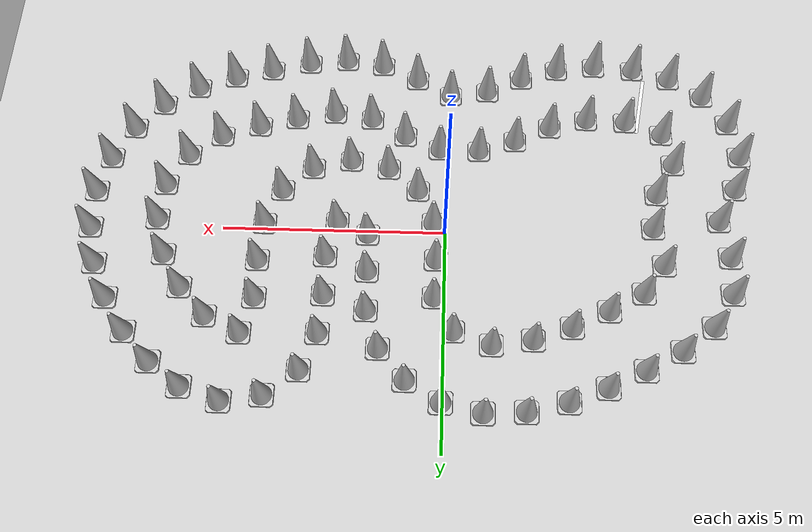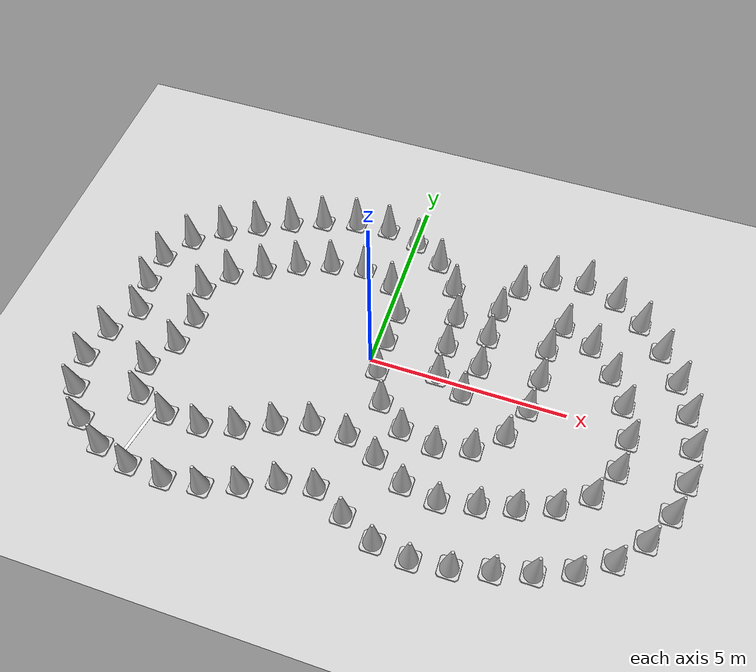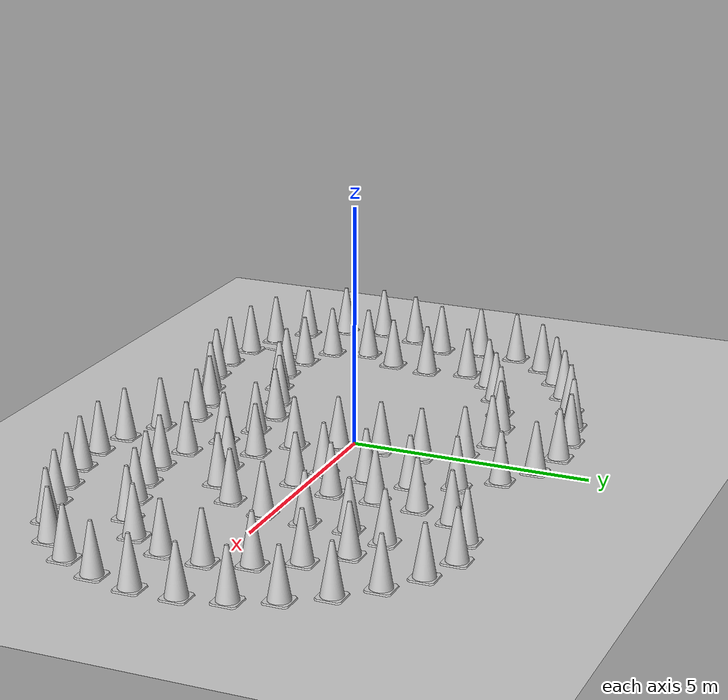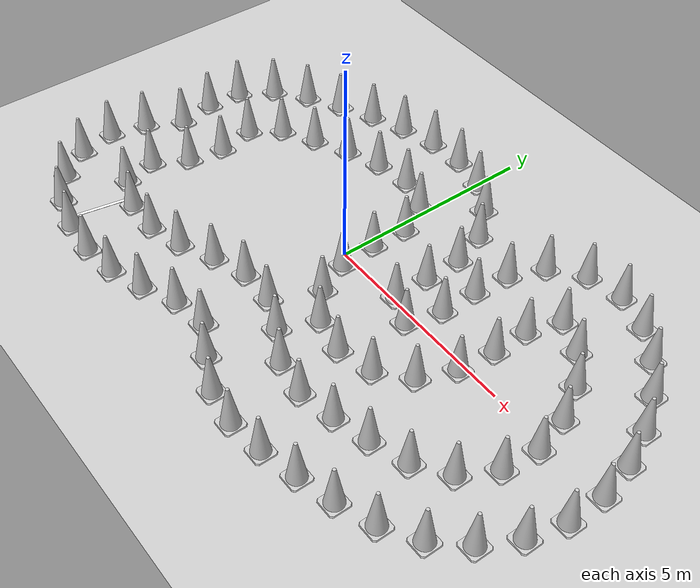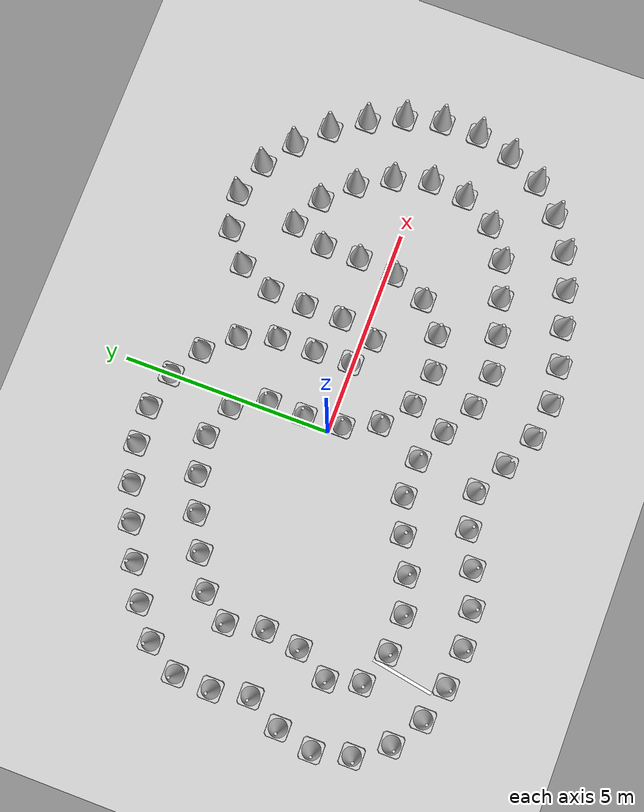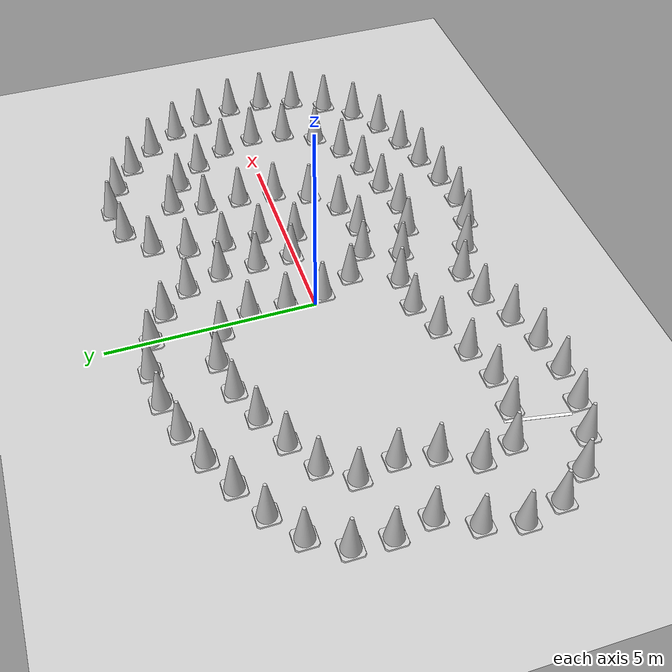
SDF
<?xml version="1.0"?>
<sdf version="1.6">
  <world name="cone_track">
    <include><uri>model://ground_plane</uri></include>
    <include><uri>model://sun</uri></include>
    <include><name>cone_0</name><uri>model://traffic_cone</uri><pose>-4.471 -2.761 0 0 0 0</pose></include>
    <include><name>cone_1</name><uri>model://traffic_cone</uri><pose>-3.555 -2.795 0 0 0 0</pose></include>
    <include><name>cone_2</name><uri>model://traffic_cone</uri><pose>-2.685 -2.565 0 0 0 0</pose></include>
    <include><name>cone_3</name><uri>model://traffic_cone</uri><pose>-1.861 -2.176 0 0 0 0</pose></include>
    <include><name>cone_4</name><uri>model://traffic_cone</uri><pose>-1.017 -1.888 0 0 0 0</pose></include>
    <include><name>cone_5</name><uri>model://traffic_cone</uri><pose>-0.109 -1.907 0 0 0 0</pose></include>
    <include><name>cone_6</name><uri>model://traffic_cone</uri><pose>0.704 -2.248 0 0 0 0</pose></include>
    <include><name>cone_7</name><uri>model://traffic_cone</uri><pose>1.501 -2.694 0 0 0 0</pose></include>
    <include><name>cone_8</name><uri>model://traffic_cone</uri><pose>2.385 -2.835 0 0 0 0</pose></include>
    <include><name>cone_9</name><uri>model://traffic_cone</uri><pose>3.279 -2.660 0 0 0 0</pose></include>
    <include><name>cone_10</name><uri>model://traffic_cone</uri><pose>4.139 -2.436 0 0 0 0</pose></include>
    <include><name>cone_11</name><uri>model://traffic_cone</uri><pose>5.002 -2.144 0 0 0 0</pose></include>
    <include><name>cone_12</name><uri>model://traffic_cone</uri><pose>5.721 -1.621 0 0 0 0</pose></include>
    <include><name>cone_13</name><uri>model://traffic_cone</uri><pose>6.158 -0.824 0 0 0 0</pose></include>
    <include><name>cone_14</name><uri>model://traffic_cone</uri><pose>6.244 0.059 0 0 0 0</pose></include>
    <include><name>cone_15</name><uri>model://traffic_cone</uri><pose>5.996 0.929 0 0 0 0</pose></include>
    <include><name>cone_16</name><uri>model://traffic_cone</uri><pose>5.544 1.708 0 0 0 0</pose></include>
    <include><name>cone_17</name><uri>model://traffic_cone</uri><pose>4.924 2.364 0 0 0 0</pose></include>
    <include><name>cone_18</name><uri>model://traffic_cone</uri><pose>4.134 2.731 0 0 0 0</pose></include>
    <include><name>cone_19</name><uri>model://traffic_cone</uri><pose>3.883 1.908 0 0 0 0</pose></include>
    <include><name>cone_20</name><uri>model://traffic_cone</uri><pose>3.894 1.014 0 0 0 0</pose></include>
    <include><name>cone_21</name><uri>model://traffic_cone</uri><pose>3.810 0.108 0 0 0 0</pose></include>
    <include><name>cone_22</name><uri>model://traffic_cone</uri><pose>3.470 -0.746 0 0 0 0</pose></include>
    <include><name>cone_23</name><uri>model://traffic_cone</uri><pose>2.801 -1.334 0 0 0 0</pose></include>
    <include><name>cone_24</name><uri>model://traffic_cone</uri><pose>1.931 -1.550 0 0 0 0</pose></include>
    <include><name>cone_25</name><uri>model://traffic_cone</uri><pose>1.055 -1.360 0 0 0 0</pose></include>
    <include><name>cone_26</name><uri>model://traffic_cone</uri><pose>0.371 -0.806 0 0 0 0</pose></include>
    <include><name>cone_27</name><uri>model://traffic_cone</uri><pose>0.007 0.011 0 0 0 0</pose></include>
    <include><name>cone_28</name><uri>model://traffic_cone</uri><pose>-0.069 0.919 0 0 0 0</pose></include>
    <include><name>cone_29</name><uri>model://traffic_cone</uri><pose>-0.042 1.812 0 0 0 0</pose></include>
    <include><name>cone_30</name><uri>model://traffic_cone</uri><pose>-0.463 2.581 0 0 0 0</pose></include>
    <include><name>cone_31</name><uri>model://traffic_cone</uri><pose>-1.295 2.871 0 0 0 0</pose></include>
    <include><name>cone_32</name><uri>model://traffic_cone</uri><pose>-2.196 2.738 0 0 0 0</pose></include>
    <include><name>cone_33</name><uri>model://traffic_cone</uri><pose>-3.041 2.434 0 0 0 0</pose></include>
    <include><name>cone_34</name><uri>model://traffic_cone</uri><pose>-3.862 2.035 0 0 0 0</pose></include>
    <include><name>cone_35</name><uri>model://traffic_cone</uri><pose>-4.641 1.601 0 0 0 0</pose></include>
    <include><name>cone_36</name><uri>model://traffic_cone</uri><pose>-5.133 0.920 0 0 0 0</pose></include>
    <include><name>cone_37</name><uri>model://traffic_cone</uri><pose>-4.948 0.023 0 0 0 0</pose></include>
    <include><name>cone_38</name><uri>model://traffic_cone</uri><pose>-5.080 -0.842 0 0 0 0</pose></include>
    <include><name>cone_39</name><uri>model://traffic_cone</uri><pose>-5.516 -1.635 0 0 0 0</pose></include>
    <include><name>cone_40</name><uri>model://traffic_cone</uri><pose>-5.306 -2.440 0 0 0 0</pose></include>
    <include><name>cone_41</name><uri>model://traffic_cone</uri><pose>-4.729 -4.239 0 0 0 0</pose></include>
    <include><name>cone_42</name><uri>model://traffic_cone</uri><pose>-3.799 -4.312 0 0 0 0</pose></include>
    <include><name>cone_43</name><uri>model://traffic_cone</uri><pose>-2.893 -4.203 0 0 0 0</pose></include>
    <include><name>cone_44</name><uri>model://traffic_cone</uri><pose>-2.034 -3.918 0 0 0 0</pose></include>
    <include><name>cone_45</name><uri>model://traffic_cone</uri><pose>-1.221 -3.533 0 0 0 0</pose></include>
    <include><name>cone_46</name><uri>model://traffic_cone</uri><pose>-0.344 -3.404 0 0 0 0</pose></include>
    <include><name>cone_47</name><uri>model://traffic_cone</uri><pose>0.458 -3.838 0 0 0 0</pose></include>
    <include><name>cone_48</name><uri>model://traffic_cone</uri><pose>1.300 -4.223 0 0 0 0</pose></include>
    <include><name>cone_49</name><uri>model://traffic_cone</uri><pose>2.179 -4.346 0 0 0 0</pose></include>
    <include><name>cone_50</name><uri>model://traffic_cone</uri><pose>3.083 -4.245 0 0 0 0</pose></include>
    <include><name>cone_51</name><uri>model://traffic_cone</uri><pose>3.978 -4.029 0 0 0 0</pose></include>
    <include><name>cone_52</name><uri>model://traffic_cone</uri><pose>4.849 -3.794 0 0 0 0</pose></include>
    <include><name>cone_53</name><uri>model://traffic_cone</uri><pose>5.709 -3.470 0 0 0 0</pose></include>
    <include><name>cone_54</name><uri>model://traffic_cone</uri><pose>6.479 -2.977 0 0 0 0</pose></include>
    <include><name>cone_55</name><uri>model://traffic_cone</uri><pose>7.081 -2.310 0 0 0 0</pose></include>
    <include><name>cone_56</name><uri>model://traffic_cone</uri><pose>7.512 -1.493 0 0 0 0</pose></include>
    <include><name>cone_57</name><uri>model://traffic_cone</uri><pose>7.732 -0.617 0 0 0 0</pose></include>
    <include><name>cone_58</name><uri>model://traffic_cone</uri><pose>7.725 0.302 0 0 0 0</pose></include>
    <include><name>cone_59</name><uri>model://traffic_cone</uri><pose>7.509 1.182 0 0 0 0</pose></include>
    <include><name>cone_60</name><uri>model://traffic_cone</uri><pose>7.138 1.996 0 0 0 0</pose></include>
    <include><name>cone_61</name><uri>model://traffic_cone</uri><pose>6.623 2.765 0 0 0 0</pose></include>
    <include><name>cone_62</name><uri>model://traffic_cone</uri><pose>5.991 3.426 0 0 0 0</pose></include>
    <include><name>cone_63</name><uri>model://traffic_cone</uri><pose>5.266 3.953 0 0 0 0</pose></include>
    <include><name>cone_64</name><uri>model://traffic_cone</uri><pose>4.395 4.243 0 0 0 0</pose></include>
    <include><name>cone_65</name><uri>model://traffic_cone</uri><pose>3.508 4.096 0 0 0 0</pose></include>
    <include><name>cone_66</name><uri>model://traffic_cone</uri><pose>2.787 3.532 0 0 0 0</pose></include>
    <include><name>cone_67</name><uri>model://traffic_cone</uri><pose>2.446 2.699 0 0 0 0</pose></include>
    <include><name>cone_68</name><uri>model://traffic_cone</uri><pose>2.383 1.812 0 0 0 0</pose></include>
    <include><name>cone_69</name><uri>model://traffic_cone</uri><pose>2.392 0.887 0 0 0 0</pose></include>
    <include><name>cone_70</name><uri>model://traffic_cone</uri><pose>2.173 0.036 0 0 0 0</pose></include>
    <include><name>cone_71</name><uri>model://traffic_cone</uri><pose>1.472 0.332 0 0 0 0</pose></include>
    <include><name>cone_72</name><uri>model://traffic_cone</uri><pose>1.447 1.231 0 0 0 0</pose></include>
    <include><name>cone_73</name><uri>model://traffic_cone</uri><pose>1.431 2.150 0 0 0 0</pose></include>
    <include><name>cone_74</name><uri>model://traffic_cone</uri><pose>1.133 3.013 0 0 0 0</pose></include>
    <include><name>cone_75</name><uri>model://traffic_cone</uri><pose>0.538 3.701 0 0 0 0</pose></include>
    <include><name>cone_76</name><uri>model://traffic_cone</uri><pose>-0.234 4.163 0 0 0 0</pose></include>
    <include><name>cone_77</name><uri>model://traffic_cone</uri><pose>-1.117 4.364 0 0 0 0</pose></include>
    <include><name>cone_78</name><uri>model://traffic_cone</uri><pose>-2.026 4.313 0 0 0 0</pose></include>
    <include><name>cone_79</name><uri>model://traffic_cone</uri><pose>-2.920 4.085 0 0 0 0</pose></include>
    <include><name>cone_80</name><uri>model://traffic_cone</uri><pose>-3.753 3.759 0 0 0 0</pose></include>
    <include><name>cone_81</name><uri>model://traffic_cone</uri><pose>-4.575 3.355 0 0 0 0</pose></include>
    <include><name>cone_82</name><uri>model://traffic_cone</uri><pose>-5.383 2.907 0 0 0 0</pose></include>
    <include><name>cone_83</name><uri>model://traffic_cone</uri><pose>-6.103 2.349 0 0 0 0</pose></include>
    <include><name>cone_84</name><uri>model://traffic_cone</uri><pose>-6.584 1.573 0 0 0 0</pose></include>
    <include><name>cone_85</name><uri>model://traffic_cone</uri><pose>-6.618 0.697 0 0 0 0</pose></include>
    <include><name>cone_86</name><uri>model://traffic_cone</uri><pose>-6.443 -0.195 0 0 0 0</pose></include>
    <include><name>cone_87</name><uri>model://traffic_cone</uri><pose>-6.884 -1.019 0 0 0 0</pose></include>
    <include><name>cone_88</name><uri>model://traffic_cone</uri><pose>-7.081 -1.892 0 0 0 0</pose></include>
    <include><name>cone_89</name><uri>model://traffic_cone</uri><pose>-6.885 -2.775 0 0 0 0</pose></include>
    <include><name>cone_90</name><uri>model://traffic_cone</uri><pose>-6.349 -3.521 0 0 0 0</pose></include>
    <include><name>cone_91</name><uri>model://traffic_cone</uri><pose>-5.584 -3.998 0 0 0 0</pose></include>
    <model name="start_line">
      <static>true</static>
      <pose>-4.600 -3.500 0.003 0 0 -0.1725</pose>
      <link name="link">
        <visual name="v"><geometry><box><size>0.08 1.50 0.004</size></box></geometry>
          <material><ambient>1 1 1 1</ambient><diffuse>1 1 1 1</diffuse></material></visual>
      </link>
    </model>
    <gui><camera name="user_camera"><pose>0 0 17 0 1.5708 0</pose></camera></gui>
  </world>
</sdf>

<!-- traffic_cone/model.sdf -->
<sdf version="1.7">
<model name="traffic_cone" canonical_link="node0_link">
  <link name="node0_link">
    <collision name="node0_collision">
      <pose relative_to="node0_link">0.00000 0.00000 0.00000 0.00000 0.00000 0.00000</pose>
      <geometry>
        <mesh>
          <uri>meshes/Body.dae</uri>
          <scale>1.00000 1.00000 1.00000</scale>
        </mesh>
      </geometry>
      <surface>
        <contact><ode>  <max_vel>0.001</max_vel><min_depth>0.01</min_depth><kd>1e15</kd>  </ode></contact>
      </surface>
    </collision>
    <inertial>
      <inertia>
        <ixx>1.94536</ixx>
        <ixy>0.00000</ixy>
        <ixz>0.00544</ixz>
        <iyy>1.94538</iyy>
        <iyz>0.00000</iyz>
        <izz>0.25007</izz>
      </inertia>
      <pose relative_to="node0_link">0.26000 -0.26000 0.30336 0.00000 0.00000 0.00000</pose>
      <mass>10.00000</mass>
    </inertial>
    <visual name="node0">
      <material>
        <diffuse>0.80000 0.80000 0.80000 1.00000</diffuse>
        <specular>0.40000 0.40000 0.40000 0.49804</specular>
        <emissive>0.00000 0.00000 0.00000 1.00000</emissive>
      </material>
      <pose relative_to="node0_link">0.00000 0.00000 0.00000 0.00000 0.00000 0.00000</pose>
      <geometry>
        <mesh>
          <uri>meshes/Body.dae</uri>
          <scale>1.00000 1.00000 1.00000</scale>
        </mesh>
      </geometry>
    </visual>
  </link>
</model>
</sdf>
